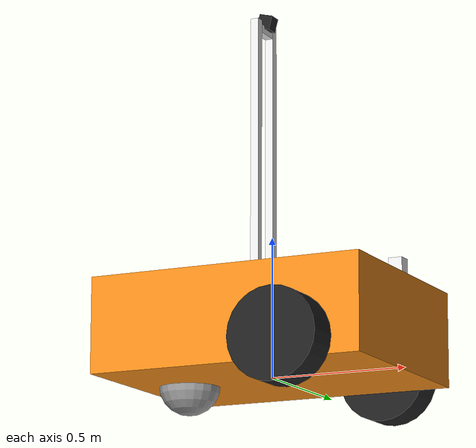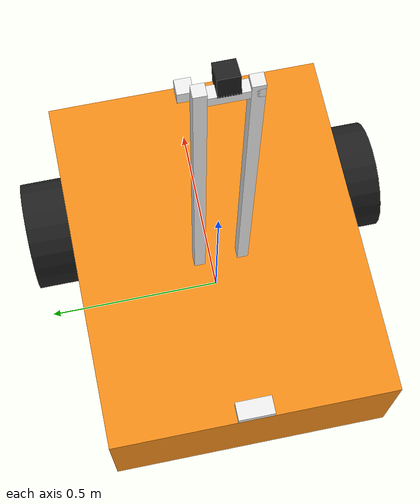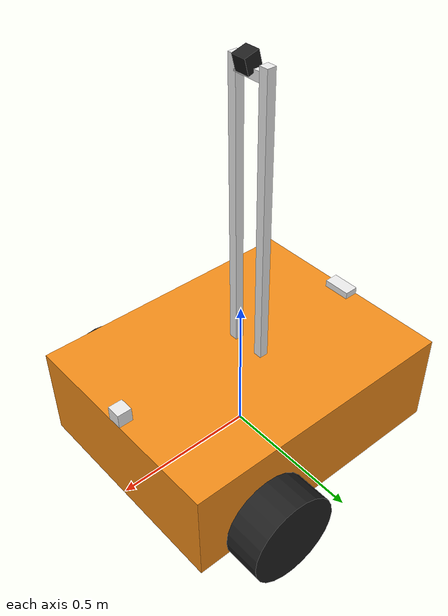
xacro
<?xml version="1.0"?>
<!--
Yeh URDF dynamic hai Koi bhi property ki value change karoge tou

bot kutta ban jaiga.

Beware of dogs
-->
<robot name="ugvbot" xmlns:xacro="http://www.ros.org/wiki/xacro">

  <xacro:property name="PI" value="3.1415926535897931"/>

  <xacro:property name="chassisHeight" value="0.34"/>
  <xacro:property name="chassisLength" value="1.005"/>
  <xacro:property name="chassisWidth" value="0.79"/>
  <xacro:property name="chassisMass" value="20.0"/>

  <xacro:property name="wheelWidth" value="0.13"/>
  <xacro:property name="wheelRadius" value="0.16"/>
  <xacro:property name="wheelPos" value="0.26"/> <!--WRT Chassis front-->
  <xacro:property name="wheelZPos" value="0.05"/> <!--WRT Chassis Bottom-->
  <xacro:property name="wheelMass" value="2.0"/>

  <xacro:property name="casterRadius" value="${wheelRadius - wheelZPos}"/> <!--casterRadius = wheelRadius - wheelZPos-->
  <xacro:property name="casterMass" value="1.0"/>
  <xacro:property name="casterPos" value="0.18"/>

  <xacro:property name="mastMass" value="1.0"/>
  <xacro:property name="mastLength" value="0.965"/>
  <xacro:property name="mastCrossection" value="0.03"/>
  <xacro:property name="mastPos" value="0.537"/> <!--WRT Chassis front-->
  <xacro:property name="mastYPos" value="0.32"/> <!--WRT Chassis front-->
  <xacro:property name="mastLinkLength" value="0.12"/>

  <xacro:property name="cameraSize" value="0.05"/>
  <xacro:property name="cameraMass" value="0.01"/>

  <xacro:property name="laserSize" value="0.05"/>
  <xacro:property name="laserMass" value="0.01"/>

  <xacro:property name="imuSize" value="0.05"/> <!--imuSize x 2*imuSize x imuSize/2-->
  <xacro:property name="imuMass" value="0.005"/>

  <xacro:include filename="$(find ugv_description)/urdf/ugvbot.gazebo" />
  <xacro:include filename="$(find ugv_description)/urdf/wheels.xacro" />
  <xacro:include filename="$(find ugv_description)/urdf/extras.xacro" />

  <xacro:include filename="$(find ugv_description)/urdf/materials.xacro" />
  <xacro:include filename="$(find ugv_description)/urdf/macros.xacro" />

  <link name="footprint"/>

  <joint name="base_joint" type="fixed">
    <parent link="footprint"/>
    <child link="chassis"/>
  </joint>

  <link name="chassis">
    <collision>
      <origin xyz="0 0 ${wheelRadius}" rpy="0 0 0"/>
      <geometry>
    	  <box size="${chassisLength} ${chassisWidth} ${chassisHeight}"/>
      </geometry>
    </collision>

    <visual>
      <origin xyz="0 0 ${wheelRadius}" rpy="0 0 0"/>
      <geometry>
    	  <box size="${chassisLength} ${chassisWidth} ${chassisHeight}"/>
      </geometry>
      <material name="orange"/>
    </visual>

    <inertial>
      <origin xyz="0 0 ${wheelRadius}" rpy="0 0 0"/>
      <mass value="${chassisMass}"/>
      <box_inertia m="${chassisMass}" x="${chassisLength}" y="${chassisWidth}" z="${chassisHeight}"/>
    </inertial>
  </link>

  <!--
    Building Caster
  -->
  <joint name="caster_joint" type="fixed">
    <parent link="chassis"/>
    <child link="caster_wheel"/>
  </joint>

  <link name="caster_wheel">
    <collision>
      <origin xyz="${casterPos-chassisLength/2} 0 0" rpy="0 0 0"/>
      <geometry>
    	  <sphere radius="${casterRadius}"/>
      </geometry>
    </collision>

    <visual>
      <origin xyz="${casterPos-chassisLength/2} 0 0" rpy="0 0 0"/>
      <geometry>
      	<sphere radius="${casterRadius}"/>
      </geometry>
    </visual>

    <inertial>
      <origin xyz="${casterPos-chassisLength/2} 0 0" rpy="0 0 0"/>
      <mass value="${casterMass}"/>
      <sphere_inertia m="${casterMass}" r="${casterRadius}"/>
    </inertial>
  </link>

  <!--
    Building Wheels
  -->
  <wheel lr="left" tY="1"/>
  <wheel lr="right" tY="-1"/>

  <!--
    Building Mast
  -->
  <mast lr="left" tY="1"/>
  <mast lr="right" tY="-1"/>

  <!--
    Link Rod Between 2 mast ${chassisWidth/2 -mastYPos - 2*mastCrossection}
  -->
	<joint name="mast_link_joint" type="fixed">
		<parent link="right_mast"/>
		<child link="mast_link"/>
		<origin xyz="0 ${-mastCrossection} ${mastLength - mastCrossection}"/>
	</joint>

  <link name="mast_link">
    <visual>
      <origin xyz="0 ${chassisWidth/2-mastYPos} 0" rpy="0 0 0"/>
      <geometry>
      <box size="${mastCrossection} ${mastLinkLength} ${mastCrossection}"/>
      <origin xyz="0 0 0"/>
      </geometry>
      <material name="white"/>
    </visual>
    <collision>
      <origin xyz="0 ${chassisWidth/2 - 3*mastCrossection/2} 0.001" rpy="0 0 0"/>
      <geometry>
      <box size="${mastCrossection} ${mastLinkLength} ${mastCrossection}"/>
      </geometry>
    </collision>
    <inertial>
      <mass value="0.5"/>
      <origin xyz="0 ${chassisWidth/2 - 3*mastCrossection/2} 0" rpy="0 0 0"/>
      <mass value="${chassisMass}"/>
      <box_inertia m="${mastMass}" x="${mastCrossection}" y="${mastLinkLength}" z="${mastCrossection}"/>
    </inertial>
  </link>

  <!--
    Adding Camera to mast link for photo keechne ke liye
  -->
	<joint name="camera_joint" type="fixed">
		<parent link="mast_link"/>
		<child link="camera"/>
    <origin xyz="${mastCrossection/2} ${chassisWidth/2 - mastYPos + mastCrossection/2} ${mastCrossection}" rpy="0 ${PI/12} 0"/>
	</joint>

  <link name="camera">
    <visual>
      <origin xyz="0 0 0" rpy="0 0 0"/>
      <geometry>
        <box size="${cameraSize} ${cameraSize} ${cameraSize}"/>
      </geometry>
      <material name="black"/>
    </visual>
    <collision>
      <geometry>
        <box size="${cameraSize} ${cameraSize} ${cameraSize}"/>
      </geometry>
    </collision>
    <inertial>
      <mass value="${cameraMass}"/>
      <box_inertia m="${cameraMass}" x="${cameraSize}" y="${cameraSize}" z="${cameraSize}"/>
    </inertial>
    <material name="Black"/>
  </link>

  <!-- The point cloud pose error is displayed in RVIZ, and an empty link and an empty joint are added here to adjust the point cloud tf pose -->
  <!--Used in gazebo reference frame name for plugin-->

  <!--
    Laser Scannner
  -->
  <joint name="laser_joint" type="fixed">
    <origin xyz="${-laserSize/2+chassisLength/2} 0 ${chassisHeight/2+wheelRadius+laserSize/2}" rpy="0 0 0"/>
    <parent link="chassis"/>
    <child link="laser"/>
  </joint>

  <link name="laser">
    <collision>
      <origin xyz="0 0 0" rpy="0 0 0"/>
      <geometry>
	      <box size="${laserSize} ${laserSize} ${laserSize}"/>
      </geometry>
    </collision>

    <visual>
      <origin xyz="0 0 0" rpy="0 0 0"/>
      <geometry>
	      <box size="${laserSize} ${laserSize} ${laserSize}"/>
        <!--IF you want fatties around your bot use HOkuyu lidar Mesh-->
      </geometry>
      <material name="White"/>
    </visual>

    <inertial>
      <mass value="${laserMass}" />
      <origin xyz="0 0 0" rpy="0 0 0"/>
      <box_inertia m="${laserMass}" x="${laserSize}" y="${laserSize}" z="${laserSize}" />
    </inertial>
  </link>

  <!--
    IMU Block
  -->

  <joint name="imu_joint" type="fixed">
    <origin xyz="${-chassisLength/2 + imuSize/2} 0 ${chassisHeight/2 + wheelRadius + imuSize/4}"/>
    <parent link="chassis"/>
    <child link="imu"/>
  </joint>

  <link name="imu">
    <collision>
      <origin xyz="0 0 0" rpy="0 0 0"/>
      <geometry>
	      <box size="${imuSize} ${2*imuSize} ${imuSize/2}"/>
      </geometry>
    </collision>

    <visual>
      <origin xyz="0 0 0" rpy="0 0 0"/>
      <geometry>
	      <box size="${imuSize} ${2*imuSize} ${imuSize/2}"/>
      </geometry>
      <material name="White"/>
    </visual>

    <inertial>
      <mass value="${laserMass}" />
      <origin xyz="0 0 0" rpy="0 0 0"/>
      <box_inertia m="${imuMass}" x="${imuSize}" y="${2*imuSize}" z="${imuSize/2}" />
    </inertial>
  </link>

</robot>

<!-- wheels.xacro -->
<robot>
    <macro name="wheel" params="lr tY">
      <link name="${lr}_wheel">
        <collision>
          <origin xyz="0 0 0.0001" rpy="0 ${PI/2} ${PI/2}" />
          <geometry>
            <cylinder length="${wheelWidth}" radius="${wheelRadius}"/>
          </geometry>
        </collision>

        <visual>
          <origin xyz="0 0 0.0001" rpy="0 ${PI/2} ${PI/2}" />
          <geometry>
            <cylinder length="${wheelWidth}" radius="${wheelRadius}"/>
          </geometry>
          <material name="black"/>
        </visual>

        <inertial>
          <origin xyz="0 0 0.0001" rpy="0 ${PI/2} ${PI/2}" />
          <mass value="${wheelMass}"/>
          <cylinder_inertia m="${wheelMass}" r="${wheelRadius}" h="${wheelWidth}"/>
        </inertial>

      </link>

      <gazebo reference="${lr}_wheel">
        <mu1 value="1000.0"/>
        <mu2 value="1000.0"/>
        <kp  value="10000000.0" />
        <kd  value="0.05" />
        <material>Gazebo/Black</material>
      </gazebo>

      <joint name="${lr}_wheel_joint" type="continuous">
        <parent link="chassis"/>
        <child link="${lr}_wheel"/>
        <origin xyz="${+chassisLength/2 - wheelPos} ${tY*wheelWidth/2+tY*chassisWidth/2} ${wheelZPos}" rpy="0 0 0" />
        <axis xyz="0 1 0" rpy="0 0 0" />
        <limit effort="5" velocity="9.375"/>
        <joint_properties damping="1000.0" friction="1000.0"/>
        <erp>0.2</erp>
        <cfm>0.02</cfm>
      </joint>

      <transmission name="${lr}_trans">
        <type>transmission_interface/SimpleTransmission</type>
        <joint name="${lr}_wheel_joint">
          <hardwareInterface>hardware_interface/VelocityJointInterface</hardwareInterface>
        </joint>
        <actuator name="${lr}Motor">
          <hardwareInterface>hardware_interface/VelocityJointInterface</hardwareInterface>
          <mechanicalReduction>1</mechanicalReduction>
        </actuator>
      </transmission>
    </macro>

</robot>

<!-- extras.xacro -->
<robot>

  <macro name="mast" params="lr tY">

    <joint name="${lr}_mast_joint" type="fixed">
      <parent link="chassis"/>
      <child link="${lr}_mast"/>
      <origin xyz="${chassisLength/2 - mastPos} ${tY*(chassisWidth/2-mastYPos-mastCrossection/2)} ${chassisHeight/2+wheelRadius}" rpy="0 0 0" />
    </joint>

    <link name="${lr}_mast">
      <visual>
        <origin xyz="0 0 ${mastLength/2}" rpy="0 0 0"/>
        <geometry>
          <box size="${mastCrossection} ${mastCrossection} ${mastLength}"/>
        </geometry>
        <material name="white"/>
      </visual>
      <collision>
        <origin xyz="0 0 ${mastLength/2}" rpy="0 0 0"/>
        <geometry>
          <box size="${mastCrossection} ${mastCrossection} ${mastLength}"/>
        </geometry>
      </collision>
      <inertial>
        <origin xyz="0 0 ${mastPos}" rpy="0 0 0"/>
        <mass value="${mastMass}"/>
        <box_inertia m="${mastMass}" x="${mastCrossection}" y="${mastCrossection}" z="${mastCrossection}"/>
      </inertial>
    </link>
  </macro>

</robot>

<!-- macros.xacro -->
<robot>
    <macro name="cylinder_inertia" params="m r h">
      <inertia  ixx="${m*(3*r*r+h*h)/12}" ixy = "0" ixz = "0"
                iyy="${m*(3*r*r+h*h)/12}" iyz = "0"
                izz="${m*r*r/2}" />
    </macro>

    <macro name="box_inertia" params="m x y z">
      <inertia  ixx="${m*(y*y+z*z)/12}" ixy = "0" ixz = "0"
                iyy="${m*(x*x+z*z)/12}" iyz = "0"
                izz="${m*(x*x+z*z)/12}" />
    </macro>

    <macro name="sphere_inertia" params="m r">
      <inertia  ixx="${2*m*r*r/5}" ixy = "0" ixz = "0"
                iyy="${2*m*r*r/5}" iyz = "0"
                izz="${2*m*r*r/5}" />
    </macro>
</robot>
